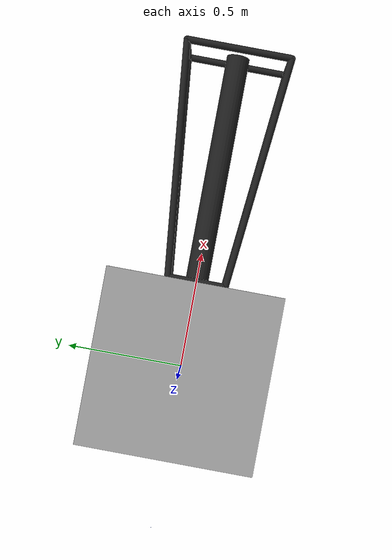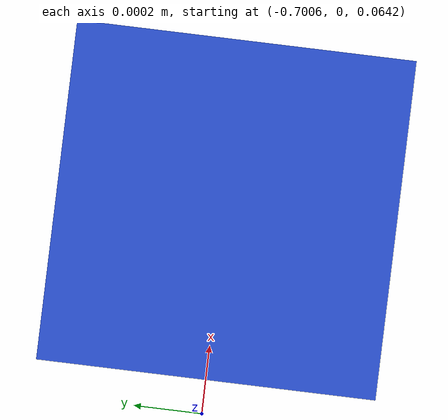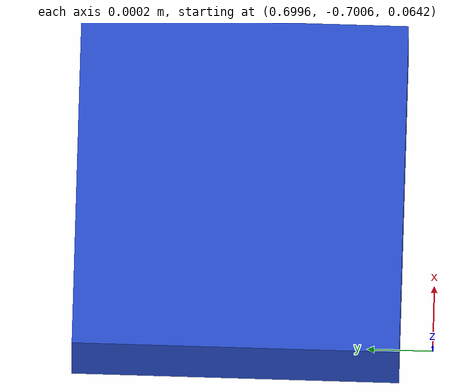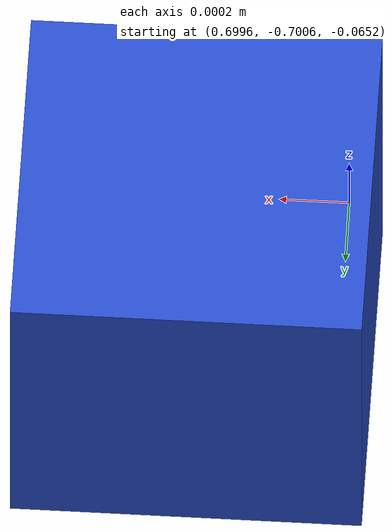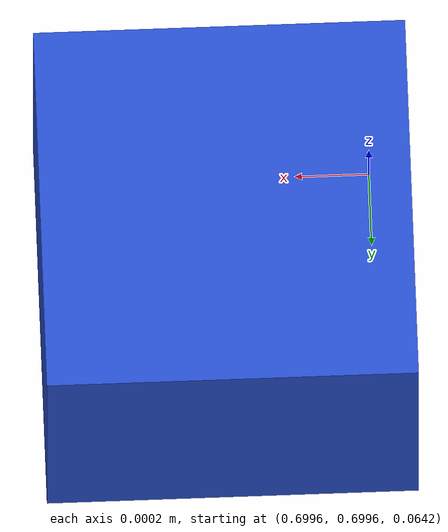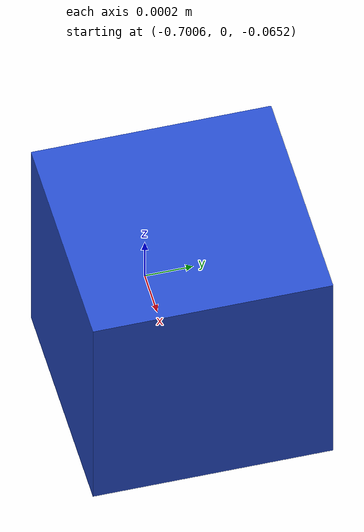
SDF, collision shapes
<?xml version="1.0" ?>

  <sdf version="1.5">
    <model name="tilt_tricopter">

      <include>
        <uri>model://tilt_tricopter_base</uri>
        <name>tilt_tricopter_base</name>
        <pose>0 0 0.0 0 0 0</pose>
      </include>
      <link name="front_rod">
        <pose>0.875 0 0 0 0 0</pose>
        <inertial>
          <pose>0 0 0 0 0 0</pose>
          <mass>0.1</mass>
          <inertia>
            <ixx>0.1</ixx>
            <iyy>0.1</iyy>
            <izz>0.1</izz>
            <ixy>0</ixy>
            <ixz>0</ixz>
            <iyz>0</iyz>
          </inertia>
        </inertial>
        <collision name="front_rod_collision">
          <pose>0 0 0 0 1.57079632679 0</pose>
          <geometry>
            <cylinder>
              <length>1.0</length>
              <radius>0.05</radius>
            </cylinder>
          </geometry>
        </collision>
        <visual name="front_rod_visual">
          <pose>0 0 0 0 1.57079632679 0</pose>
          <geometry>
            <cylinder>
              <length>1.0</length>
              <radius>0.05</radius>
            </cylinder>
          </geometry>
          <material>
            <script>
              <name>Gazebo/Black</name>
            </script>
          </material>
        </visual>

        <collision name="front_frame_near_top_collision">
          <pose>-0.5 0.0 0.09 0 1.5707963267948966 1.5707963267948966</pose>
          <geometry>
            <cylinder>
              <length>0.25</length>
              <radius>0.015</radius>
            </cylinder>
          </geometry>
        </collision>
        <visual name="front_frame_near_top_visual">
          <pose>-0.5 0.0 0.09 0 1.5707963267948966 1.5707963267948966</pose>
          <geometry>
            <cylinder>
              <length>0.25</length>
              <radius>0.015</radius>
            </cylinder>
          </geometry>
          <material>
            <script>
              <name>Gazebo/Black</name>
            </script>
          </material>
        </visual>

        <collision name="front_frame_near_bottom_collision">
          <pose>-0.5 0.0 -0.09 0 1.5707963267948966 1.5707963267948966</pose>
          <geometry>
            <cylinder>
              <length>0.25</length>
              <radius>0.015</radius>
            </cylinder>
          </geometry>
        </collision>
        <visual name="front_frame_near_bottom_visual">
          <pose>-0.5 0.0 -0.09 0 1.5707963267948966 1.5707963267948966</pose>
          <geometry>
            <cylinder>
              <length>0.25</length>
              <radius>0.015</radius>
            </cylinder>
          </geometry>
          <material>
            <script>
              <name>Gazebo/Black</name>
            </script>
          </material>
        </visual>

        <collision name="front_frame_near_left_collision">
          <pose>-0.5 -0.125 0.0 0 3.141592653589793 0.0</pose>
          <geometry>
            <cylinder>
              <length>0.18</length>
              <radius>0.015</radius>
            </cylinder>
          </geometry>
        </collision>
        <visual name="front_frame_near_left_visual">
          <pose>-0.5 -0.125 0.0 0 3.141592653589793 0.0</pose>
          <geometry>
            <cylinder>
              <length>0.18</length>
              <radius>0.015</radius>
            </cylinder>
          </geometry>
          <material>
            <script>
              <name>Gazebo/Black</name>
            </script>
          </material>
        </visual>

        <collision name="front_frame_near_right_collision">
          <pose>-0.5 0.125 0.0 0 3.141592653589793 0.0</pose>
          <geometry>
            <cylinder>
              <length>0.18</length>
              <radius>0.015</radius>
            </cylinder>
          </geometry>
        </collision>
        <visual name="front_frame_near_right_visual">
          <pose>-0.5 0.125 0.0 0 3.141592653589793 0.0</pose>
          <geometry>
            <cylinder>
              <length>0.18</length>
              <radius>0.015</radius>
            </cylinder>
          </geometry>
          <material>
            <script>
              <name>Gazebo/Black</name>
            </script>
          </material>
        </visual>

        <collision name="front_frame_far_top_collision">
          <pose>0.5 0.0 0.14 0 1.5707963267948966 1.5707963267948966</pose>
          <geometry>
            <cylinder>
              <length>0.45</length>
              <radius>0.015</radius>
            </cylinder>
          </geometry>
        </collision>
        <visual name="front_frame_far_top_visual">
          <pose>0.5 0.0 0.14 0 1.5707963267948966 1.5707963267948966</pose>
          <geometry>
            <cylinder>
              <length>0.45</length>
              <radius>0.015</radius>
            </cylinder>
          </geometry>
          <material>
            <script>
              <name>Gazebo/Black</name>
            </script>
          </material>
        </visual>

        <collision name="front_frame_far_bottom_collision">
          <pose>0.5 0.0 -0.14 0 1.5707963267948966 1.5707963267948966</pose>
          <geometry>
            <cylinder>
              <length>0.45</length>
              <radius>0.015</radius>
            </cylinder>
          </geometry>
        </collision>
        <visual name="front_frame_far_bottom_visual">
          <pose>0.5 0.0 -0.14 0 1.5707963267948966 1.5707963267948966</pose>
          <geometry>
            <cylinder>
              <length>0.45</length>
              <radius>0.015</radius>
            </cylinder>
          </geometry>
          <material>
            <script>
              <name>Gazebo/Black</name>
            </script>
          </material>
        </visual>

        <collision name="front_frame_far_left_collision">
          <pose>0.5 -0.225 0.0 0 3.141592653589793 0.0</pose>
          <geometry>
            <cylinder>
              <length>0.28</length>
              <radius>0.015</radius>
            </cylinder>
          </geometry>
        </collision>
        <visual name="front_frame_far_left_visual">
          <pose>0.5 -0.225 0.0 0 3.141592653589793 0.0</pose>
          <geometry>
            <cylinder>
              <length>0.28</length>
              <radius>0.015</radius>
            </cylinder>
          </geometry>
          <material>
            <script>
              <name>Gazebo/Black</name>
            </script>
          </material>
        </visual>

        <collision name="front_frame_far_right_collision">
          <pose>0.5 0.225 0.0 0 3.141592653589793 0.0</pose>
          <geometry>
            <cylinder>
              <length>0.28</length>
              <radius>0.015</radius>
            </cylinder>
          </geometry>
        </collision>
        <visual name="front_frame_far_right_visual">
          <pose>0.5 0.225 0.0 0 3.141592653589793 0.0</pose>
          <geometry>
            <cylinder>
              <length>0.28</length>
              <radius>0.015</radius>
            </cylinder>
          </geometry>
          <material>
            <script>
              <name>Gazebo/Black</name>
            </script>
          </material>
        </visual>

        <collision name="front_frame_left_top_collision">
          <pose>0.0 -0.175 0.115 0 1.5210854558165732 -0.09966865249116204</pose>
          <geometry>
            <cylinder>
              <length>1.0062305898749053</length>
              <radius>0.015</radius>
            </cylinder>
          </geometry>
        </collision>
        <visual name="front_frame_left_top_visual">
          <pose>0.0 -0.175 0.115 0 1.5210854558165732 -0.09966865249116204</pose>
          <geometry>
            <cylinder>
              <length>1.0062305898749053</length>
              <radius>0.015</radius>
            </cylinder>
          </geometry>
          <material>
            <script>
              <name>Gazebo/Black</name>
            </script>
          </material>
        </visual>

        <collision name="front_frame_right_top_collision">
          <pose>0.0 0.175 0.115 0 1.5210854558165732 0.09966865249116204</pose>
          <geometry>
            <cylinder>
              <length>1.0062305898749053</length>
              <radius>0.015</radius>
            </cylinder>
          </geometry>
        </collision>
        <visual name="front_frame_right_top_visual">
          <pose>0.0 0.175 0.115 0 1.5210854558165732 0.09966865249116204</pose>
          <geometry>
            <cylinder>
              <length>1.0062305898749053</length>
              <radius>0.015</radius>
            </cylinder>
          </geometry>
          <material>
            <script>
              <name>Gazebo/Black</name>
            </script>
          </material>
        </visual>

        <collision name="front_frame_left_bottom_collision">
          <pose>0.0 -0.175 -0.115 0 1.6205071977732202 -0.09966865249116204</pose>
          <geometry>
            <cylinder>
              <length>1.0062305898749053</length>
              <radius>0.015</radius>
            </cylinder>
          </geometry>
        </collision>
        <visual name="front_frame_left_bottom_visual">
          <pose>0.0 -0.175 -0.115 0 1.6205071977732202 -0.09966865249116204</pose>
          <geometry>
            <cylinder>
              <length>1.0062305898749053</length>
              <radius>0.015</radius>
            </cylinder>
          </geometry>
          <material>
            <script>
              <name>Gazebo/Black</name>
            </script>
          </material>
        </visual>

        <collision name="front_frame_right_bottom_collision">
          <pose>0.0 0.175 -0.115 0 1.6205071977732202 0.09966865249116204</pose>
          <geometry>
            <cylinder>
              <length>1.0062305898749053</length>
              <radius>0.015</radius>
            </cylinder>
          </geometry>
        </collision>
        <visual name="front_frame_right_bottom_visual">
          <pose>0.0 0.175 -0.115 0 1.6205071977732202 0.09966865249116204</pose>
          <geometry>
            <cylinder>
              <length>1.0062305898749053</length>
              <radius>0.015</radius>
            </cylinder>
          </geometry>
          <material>
            <script>
              <name>Gazebo/Black</name>
            </script>
          </material>
        </visual>

        <sensor name="front_rangefinder" type="ray">
          <pose>0.5 0 0 0 0 0</pose>
          <always_on>true</always_on>
          <update_rate>50</update_rate>
          <ray>
            <scan>
              <horizontal>
                <samples>1</samples>
                <resolution>1</resolution>
                <min_angle>0</min_angle>
                <max_angle>0</max_angle>
              </horizontal>
            </scan>
            <range>
              <min>0.05</min>
              <max>10.0</max>
              <resolution>0.001</resolution>
            </range>
          </ray>
        </sensor>
      </link>
      <joint name="front_rod_joint" type="fixed">
        <parent>tilt_tricopter_base::base</parent>
        <child>front_rod</child>
        <sensor name="front_rod_force_torque" type="force_torque">
          <always_on>true</always_on>
          <update_rate>100</update_rate>
          <force_torque>
            <frame>child</frame>
            <measure_direction>parent_to_child</measure_direction>
          </force_torque>
        </sensor>
      </joint>

      <include>
        <uri>model://tilt_tricopter_tilt_front</uri>
        <name>tilt_tricopter_tilt_front_0</name>
        <pose>0.7 -0.7 0 0 0 0</pose>
      </include>
      <joint name="tilt_tricopter_tilt_front_0_joint" type="revolute">
        <parent>tilt_tricopter_base::base</parent>
        <child>tilt_tricopter_tilt_front_0::tilt</child>
        <axis>
          <xyz>0 1 0</xyz>
          <limit>
            <lower>-1e+16</lower>
            <upper>1e+16</upper>
          </limit>
          <dynamics>
            <damping>0.1</damping>
            <spring_stiffness>0</spring_stiffness>
            <spring_reference>0</spring_reference>
          </dynamics>
          <use_parent_model_frame>1</use_parent_model_frame>
        </axis>
        <physics>
          <ode>
            <implicit_spring_damper>1</implicit_spring_damper>
          </ode>
        </physics>
      </joint>
      <plugin name="tilt_tricopter_tilt_front_0_plugin" filename='librotors_gazebo_motor_model.so'>
        <robotNamespace></robotNamespace>
        <jointName>tilt_tricopter_tilt_front_0_joint </jointName>
        <linkName>tilt_tricopter_tilt_front_0::tilt</linkName>
        <turningDirection>cw</turningDirection>
        <motorType>position</motorType>
        <commandSubTopic>/gazebo/command/tilt1_pos</commandSubTopic>
        <motorNumber>0</motorNumber>
        <motorSpeedPubTopic>tilt_pos/0</motorSpeedPubTopic>
        <joint_control_pid>
          <p>3</p>
          <i>1.2</i>
          <d>0.8</d>
          <iMax>10</iMax>
          <iMin>-10</iMin>
          <cmdMax>50</cmdMax>
          <cmdMin>-50</cmdMin>
        </joint_control_pid>
      </plugin>

      <include>
        <uri>model://tilt_tricopter_tilt_back</uri>
        <name>tilt_tricopter_tilt_back_0</name>
        <pose>-0.7 0.0 0 0 0 0</pose>
      </include>
      <joint name="tilt_tricopter_tilt_back_0_joint" type="revolute">
        <parent>tilt_tricopter_base::base</parent>
        <child>tilt_tricopter_tilt_back_0::tilt</child>
        <axis>
          <xyz>0 1 0</xyz>
          <limit>
            <lower>-1e+16</lower>
            <upper>1e+16</upper>
          </limit>
          <dynamics>
            <damping>0.1</damping>
            <spring_stiffness>0</spring_stiffness>
            <spring_reference>0</spring_reference>
          </dynamics>
          <use_parent_model_frame>1</use_parent_model_frame>
        </axis>
        <physics>
          <ode>
            <implicit_spring_damper>1</implicit_spring_damper>
          </ode>
        </physics>
      </joint>
      <plugin name="tilt_tricopter_tilt_back_0_plugin" filename='librotors_gazebo_motor_model.so'>
        <robotNamespace></robotNamespace>
        <jointName>tilt_tricopter_tilt_back_0_joint </jointName>
        <linkName>tilt_tricopter_tilt_back_0::tilt</linkName>
        <turningDirection>cw</turningDirection>
        <motorType>position</motorType>
        <commandSubTopic>/gazebo/command/tilt1_pos</commandSubTopic>
        <motorNumber>1</motorNumber>
        <motorSpeedPubTopic>tilt_pos/1</motorSpeedPubTopic>
        <joint_control_pid>
          <p>3</p>
          <i>1.2</i>
          <d>0.8</d>
          <iMax>10</iMax>
          <iMin>-10</iMin>
          <cmdMax>50</cmdMax>
          <cmdMin>-50</cmdMin>
        </joint_control_pid>
      </plugin>

      <include>
        <uri>model://tilt_tricopter_tilt_front</uri>
        <name>tilt_tricopter_tilt_front_1</name>
        <pose>0.7 0.7 0 0 0 3.141592653589793</pose>
      </include>
      <joint name="tilt_tricopter_tilt_front_1_joint" type="revolute">
        <parent>tilt_tricopter_base::base</parent>
        <child>tilt_tricopter_tilt_front_1::tilt</child>
        <axis>
          <xyz>0 -1 0</xyz>
          <limit>
            <lower>-1e+16</lower>
            <upper>1e+16</upper>
          </limit>
          <dynamics>
            <damping>0.1</damping>
            <spring_stiffness>0</spring_stiffness>
            <spring_reference>0</spring_reference>
          </dynamics>
          <use_parent_model_frame>1</use_parent_model_frame>
        </axis>
        <physics>
          <ode>
            <implicit_spring_damper>1</implicit_spring_damper>
          </ode>
        </physics>
      </joint>
      <plugin name="tilt_tricopter_tilt_front_1_plugin" filename='librotors_gazebo_motor_model.so'>
        <robotNamespace></robotNamespace>
        <jointName>tilt_tricopter_tilt_front_1_joint </jointName>
        <linkName>tilt_tricopter_tilt_front_1::tilt</linkName>
        <turningDirection>cw</turningDirection>
        <motorType>position</motorType>
        <commandSubTopic>/gazebo/command/tilt1_pos</commandSubTopic>
        <motorNumber>2</motorNumber>
        <motorSpeedPubTopic>tilt_pos/2</motorSpeedPubTopic>
        <joint_control_pid>
          <p>3</p>
          <i>1.2</i>
          <d>0.8</d>
          <iMax>10</iMax>
          <iMin>-10</iMin>
          <cmdMax>50</cmdMax>
          <cmdMin>-50</cmdMin>
        </joint_control_pid>
      </plugin>

  <include>
    <uri>model://tilt_tricopter_prop</uri>
    <name>tilt_tricopter_prop_0</name>
    <pose>0.7 -0.7 0.0647 0 0 0</pose>
  </include>
  <joint name="tilt_tricopter_prop_0_joint" type="revolute">
    <parent>tilt_tricopter_tilt_front_0::tilt</parent>
    <child>tilt_tricopter_prop_0::prop</child>
    <axis>
      <xyz>0 0 1</xyz>
      <limit>
        <lower>-1e+16</lower>
        <upper>1e+16</upper>
      </limit>
      <dynamics>
        <damping>0.0001</damping>
      </dynamics>
      <use_parent_model_frame>1</use_parent_model_frame>
    </axis>
  </joint>
  <plugin name = "prop_0_plugin" filename='librotors_gazebo_motor_model.so'>
    <robotNamespace></robotNamespace>
    <jointName>tilt_tricopter_prop_0_joint </jointName>
    <linkName>tilt_tricopter_prop_0::prop</linkName>
    <turningDirection>ccw</turningDirection>
    <timeConstantUp>0.0125</timeConstantUp>
    <timeConstantDown>0.025</timeConstantDown>
    <maxRotVelocity>1000</maxRotVelocity>
    <motorConstant>1.199e-05</motorConstant>
    <momentConstant>0.1</momentConstant>
    <commandSubTopic>/gazebo/command/prop_speed</commandSubTopic>
    <motorNumber>0</motorNumber>
    <rotorDragCoefficient>0.000806428</rotorDragCoefficient>
    <rollingMomentCoefficient>1e-06</rollingMomentCoefficient>
    <motorSpeedPubTopic>prop_speed/0</motorSpeedPubTopic>
    <rotorVelocitySlowdownSim>10</rotorVelocitySlowdownSim>
  </plugin>

  <include>
    <uri>model://tilt_tricopter_prop</uri>
    <name>tilt_tricopter_prop_1</name>
    <pose>0.7 -0.7 -0.0647 0 0 0</pose>
  </include>
  <joint name="tilt_tricopter_prop_1_joint" type="revolute">
    <parent>tilt_tricopter_tilt_front_0::tilt</parent>
    <child>tilt_tricopter_prop_1::prop</child>
    <axis>
      <xyz>0 0 1</xyz>
      <limit>
        <lower>-1e+16</lower>
        <upper>1e+16</upper>
      </limit>
      <dynamics>
        <damping>0.0001</damping>
      </dynamics>
      <use_parent_model_frame>1</use_parent_model_frame>
    </axis>
  </joint>
  <plugin name = "prop_1_plugin" filename='librotors_gazebo_motor_model.so'>
    <robotNamespace></robotNamespace>
    <jointName>tilt_tricopter_prop_1_joint </jointName>
    <linkName>tilt_tricopter_prop_1::prop</linkName>
    <turningDirection>cw</turningDirection>
    <timeConstantUp>0.0125</timeConstantUp>
    <timeConstantDown>0.025</timeConstantDown>
    <maxRotVelocity>1000</maxRotVelocity>
    <motorConstant>1.199e-05</motorConstant>
    <momentConstant>0.1</momentConstant>
    <commandSubTopic>/gazebo/command/prop_speed</commandSubTopic>
    <motorNumber>1</motorNumber>
    <rotorDragCoefficient>0.000806428</rotorDragCoefficient>
    <rollingMomentCoefficient>1e-06</rollingMomentCoefficient>
    <motorSpeedPubTopic>prop_speed/1</motorSpeedPubTopic>
    <rotorVelocitySlowdownSim>10</rotorVelocitySlowdownSim>
  </plugin>

  <include>
    <uri>model://tilt_tricopter_prop</uri>
    <name>tilt_tricopter_prop_2</name>
    <pose>-0.7 -0.0 0.0647 0 0 0</pose>
  </include>
  <joint name="tilt_tricopter_prop_2_joint" type="revolute">
    <parent>tilt_tricopter_tilt_back_0::tilt</parent>
    <child>tilt_tricopter_prop_2::prop</child>
    <axis>
      <xyz>0 0 1</xyz>
      <limit>
        <lower>-1e+16</lower>
        <upper>1e+16</upper>
      </limit>
      <dynamics>
        <damping>0.0001</damping>
      </dynamics>
      <use_parent_model_frame>1</use_parent_model_frame>
    </axis>
  </joint>
  <plugin name = "prop_2_plugin" filename='librotors_gazebo_motor_model.so'>
    <robotNamespace></robotNamespace>
    <jointName>tilt_tricopter_prop_2_joint </jointName>
    <linkName>tilt_tricopter_prop_2::prop</linkName>
    <turningDirection>ccw</turningDirection>
    <timeConstantUp>0.0125</timeConstantUp>
    <timeConstantDown>0.025</timeConstantDown>
    <maxRotVelocity>1000</maxRotVelocity>
    <motorConstant>1.199e-05</motorConstant>
    <momentConstant>0.1</momentConstant>
    <commandSubTopic>/gazebo/command/prop_speed</commandSubTopic>
    <motorNumber>2</motorNumber>
    <rotorDragCoefficient>0.000806428</rotorDragCoefficient>
    <rollingMomentCoefficient>1e-06</rollingMomentCoefficient>
    <motorSpeedPubTopic>prop_speed/2</motorSpeedPubTopic>
    <rotorVelocitySlowdownSim>10</rotorVelocitySlowdownSim>
  </plugin>

  <include>
    <uri>model://tilt_tricopter_prop</uri>
    <name>tilt_tricopter_prop_3</name>
    <pose>-0.7 -0.0 -0.0647 0 0 0</pose>
  </include>
  <joint name="tilt_tricopter_prop_3_joint" type="revolute">
    <parent>tilt_tricopter_tilt_back_0::tilt</parent>
    <child>tilt_tricopter_prop_3::prop</child>
    <axis>
      <xyz>0 0 1</xyz>
      <limit>
        <lower>-1e+16</lower>
        <upper>1e+16</upper>
      </limit>
      <dynamics>
        <damping>0.0001</damping>
      </dynamics>
      <use_parent_model_frame>1</use_parent_model_frame>
    </axis>
  </joint>
  <plugin name = "prop_3_plugin" filename='librotors_gazebo_motor_model.so'>
    <robotNamespace></robotNamespace>
    <jointName>tilt_tricopter_prop_3_joint </jointName>
    <linkName>tilt_tricopter_prop_3::prop</linkName>
    <turningDirection>cw</turningDirection>
    <timeConstantUp>0.0125</timeConstantUp>
    <timeConstantDown>0.025</timeConstantDown>
    <maxRotVelocity>1000</maxRotVelocity>
    <motorConstant>1.199e-05</motorConstant>
    <momentConstant>0.1</momentConstant>
    <commandSubTopic>/gazebo/command/prop_speed</commandSubTopic>
    <motorNumber>3</motorNumber>
    <rotorDragCoefficient>0.000806428</rotorDragCoefficient>
    <rollingMomentCoefficient>1e-06</rollingMomentCoefficient>
    <motorSpeedPubTopic>prop_speed/3</motorSpeedPubTopic>
    <rotorVelocitySlowdownSim>10</rotorVelocitySlowdownSim>
  </plugin>

  <include>
    <uri>model://tilt_tricopter_prop</uri>
    <name>tilt_tricopter_prop_4</name>
    <pose>0.7 0.7 0.0647 0 0 0</pose>
  </include>
  <joint name="tilt_tricopter_prop_4_joint" type="revolute">
    <parent>tilt_tricopter_tilt_front_1::tilt</parent>
    <child>tilt_tricopter_prop_4::prop</child>
    <axis>
      <xyz>0 0 1</xyz>
      <limit>
        <lower>-1e+16</lower>
        <upper>1e+16</upper>
      </limit>
      <dynamics>
        <damping>0.0001</damping>
      </dynamics>
      <use_parent_model_frame>1</use_parent_model_frame>
    </axis>
  </joint>
  <plugin name = "prop_4_plugin" filename='librotors_gazebo_motor_model.so'>
    <robotNamespace></robotNamespace>
    <jointName>tilt_tricopter_prop_4_joint </jointName>
    <linkName>tilt_tricopter_prop_4::prop</linkName>
    <turningDirection>ccw</turningDirection>
    <timeConstantUp>0.0125</timeConstantUp>
    <timeConstantDown>0.025</timeConstantDown>
    <maxRotVelocity>1000</maxRotVelocity>
    <motorConstant>1.199e-05</motorConstant>
    <momentConstant>0.1</momentConstant>
    <commandSubTopic>/gazebo/command/prop_speed</commandSubTopic>
    <motorNumber>4</motorNumber>
    <rotorDragCoefficient>0.000806428</rotorDragCoefficient>
    <rollingMomentCoefficient>1e-06</rollingMomentCoefficient>
    <motorSpeedPubTopic>prop_speed/4</motorSpeedPubTopic>
    <rotorVelocitySlowdownSim>10</rotorVelocitySlowdownSim>
  </plugin>

  <include>
    <uri>model://tilt_tricopter_prop</uri>
    <name>tilt_tricopter_prop_5</name>
    <pose>0.7 0.7 -0.0647 0 0 0</pose>
  </include>
  <joint name="tilt_tricopter_prop_5_joint" type="revolute">
    <parent>tilt_tricopter_tilt_front_1::tilt</parent>
    <child>tilt_tricopter_prop_5::prop</child>
    <axis>
      <xyz>0 0 1</xyz>
      <limit>
        <lower>-1e+16</lower>
        <upper>1e+16</upper>
      </limit>
      <dynamics>
        <damping>0.0001</damping>
      </dynamics>
      <use_parent_model_frame>1</use_parent_model_frame>
    </axis>
  </joint>
  <plugin name = "prop_5_plugin" filename='librotors_gazebo_motor_model.so'>
    <robotNamespace></robotNamespace>
    <jointName>tilt_tricopter_prop_5_joint </jointName>
    <linkName>tilt_tricopter_prop_5::prop</linkName>
    <turningDirection>cw</turningDirection>
    <timeConstantUp>0.0125</timeConstantUp>
    <timeConstantDown>0.025</timeConstantDown>
    <maxRotVelocity>1000</maxRotVelocity>
    <motorConstant>1.199e-05</motorConstant>
    <momentConstant>0.1</momentConstant>
    <commandSubTopic>/gazebo/command/prop_speed</commandSubTopic>
    <motorNumber>5</motorNumber>
    <rotorDragCoefficient>0.000806428</rotorDragCoefficient>
    <rollingMomentCoefficient>1e-06</rollingMomentCoefficient>
    <motorSpeedPubTopic>prop_speed/5</motorSpeedPubTopic>
    <rotorVelocitySlowdownSim>10</rotorVelocitySlowdownSim>
  </plugin>

<plugin filename="gz-sim-odometry-publisher-system"
        name="gz::sim::systems::OdometryPublisher">
  <odom_frame>odom</odom_frame>
  <robot_base_frame>tilt_tricopter_base::base</robot_base_frame>
  <dimensions>3</dimensions>
  <odom_topic>/model/tilt_tricopter/odometry</odom_topic>
</plugin>

<plugin name="ArduRotorTiltTricopter" filename="libArduRotorTiltTricopter.so">
  <fdm_addr>127.0.0.1</fdm_addr>
  <fdm_port_in>9002</fdm_port_in>
  <fdm_port_out>9003</fdm_port_out>
  <modelXYZToAirplaneXForwardZDown>0 0 0 3.141593 0 0</modelXYZToAirplaneXForwardZDown>
  <gazeboXYZToNED>0 0 0 3.141593 0 0</gazeboXYZToNED>
  <motor_num>6</motor_num>
  <servo_num>3</servo_num>
  <motor_pub>/gazebo/command/prop_speed</motor_pub>
  <servo1_pub>/gazebo/command/tilt1_pos</servo1_pub>
  <frontRodContactForceXTopic>/tilt_tricopter/front_rod/contact_force_x</frontRodContactForceXTopic>
  <frontRodForceTorqueName>front_rod_force_torque</frontRodForceTorqueName>
  <adm002UdpBindAddr>127.0.0.1</adm002UdpBindAddr>
  <adm002UdpBindPort>9024</adm002UdpBindPort>
  <adm002ForceScale>1.0</adm002ForceScale>
  <adm002StreamRateHz>100.0</adm002StreamRateHz>
  <rangefinderName>front_rangefinder</rangefinderName>
  <rangefinderUdpBindAddr>127.0.0.1</rangefinderUdpBindAddr>
  <rangefinderUdpBindPort>9025</rangefinderUdpBindPort>
  <rangefinderMinDistanceM>0.05</rangefinderMinDistanceM>
  <rangefinderMaxDistanceM>10.0</rangefinderMaxDistanceM>
  <rangefinderRateHz>50.0</rangefinderRateHz>
  <imuName>tilt_tricopter_base::imu_link::imu_sensor</imuName>
  <connectionTimeoutMaxCount>5</connectionTimeoutMaxCount>
</plugin>

<plugin name="imu_plugin" filename="librotors_gazebo_imu_plugin.so">
  <robotNamespace>tilt_tricopter</robotNamespace>
  <linkName>tilt_tricopter_base::imu_link</linkName>
  <imuTopic>imu</imuTopic>
  <gyroscopeNoiseDensity>0.000349</gyroscopeNoiseDensity>     <!-- rad/s/√Hz -->
  <gyroscopeBiasRandomWalk>0.000266</gyroscopeBiasRandomWalk>          <!-- rad/s²/√Hz -->
  <gyroscopeBiasCorrelationTime>600</gyroscopeBiasCorrelationTime>
  <gyroscopeTurnOnBiasSigma>0.0004</gyroscopeTurnOnBiasSigma>  <!-- rad/s -->
  <accelerometerNoiseDensity>0.00324</accelerometerNoiseDensity> <!-- m/s²/√Hz -->
  <accelerometerRandomWalk>0.0056</accelerometerRandomWalk>     <!-- m/s³/√Hz -->
  <accelerometerBiasCorrelationTime>600</accelerometerBiasCorrelationTime>
  <accelerometerTurnOnBiasSigma>0.016</accelerometerTurnOnBiasSigma> <!-- m/s² -->
</plugin>

</model>
</sdf>

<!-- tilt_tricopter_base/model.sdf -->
<sdf version="1.5">
    <model name="tilt_tricopter_base">

      <link name="base">
      <pose>0 0 0.0  0 0 0</pose>
      <inertial>
        <pose>0 0 0 0 0 0</pose>
        <mass>1.0</mass>
        <inertia>
          <ixx>0.2</ixx>
          <iyy>0.2</iyy>
          <izz>0.2</izz>
          <ixy>0</ixy>
          <ixz>0</ixz>
          <iyz>0</iyz>
        </inertia>
      </inertial>
      <collision name="base_collision">
        <pose>0 0 0  0 0 0</pose>
        <geometry>
          <box>
            <size>0.750 0.750 0.45</size>
          </box>
        </geometry>
        <surface>
          <contact>
            <ode/>
          </contact>
          <friction>
            <ode/>
          </friction>
        </surface>
      </collision>
      <visual name="base_visual">
        <geometry>
          <mesh>
            <uri>model://tilt_tricopter_base/meshes/base.STL</uri>
          </mesh>
        </geometry>
        <material>
          <script>
            <name>Gazebo/Grey</name>
          </script>
        </material>
      </visual>
    </link>
    <link name='imu_link'>
    <inertial>
      <pose>0 0 0 0 0 0</pose>
      <mass>0.15</mass>
      <inertia>
        <ixx>0.00001</ixx>
        <ixy>0</ixy>
        <ixz>0</ixz>
        <iyy>0.00002</iyy>
        <iyz>0</iyz>
        <izz>0.00002</izz>
      </inertia>
    </inertial>
    <visual name="imu_visual">
      <pose>0 0 0 0 0 0</pose>
      <geometry>
          <box>
              <size>0.02 0.02 0.02</size>
          </box>
      </geometry>
      <material>
          <script>
              <name>Gazebo/Green</name>
          </script>
      </material>
    </visual>
    <sensor name="imu_sensor" type="imu">
      <pose>0 0 0 0 0 0</pose>
      <always_on>1</always_on>
      <update_rate>1000.0</update_rate>
      <topic>__default_topic__</topic>
    </sensor>
  </link>
  <joint name='imu_joint' type='fixed'>
    <child>imu_link</child>
    <parent>base</parent>
    <axis>
      <xyz>0 0 1</xyz>
      <limit>
        <lower>-0.00001</lower>
        <upper>0.00001</upper>
        <effort>0</effort>
        <velocity>0</velocity>
      </limit>
      <dynamics>
        <damping>1.0</damping>
      </dynamics>
      <use_parent_model_frame>1</use_parent_model_frame>
    </axis>
    <physics>
      <ode>
        <implicit_spring_damper>1</implicit_spring_damper>
      </ode>
    </physics>
  </joint>

</model>
</sdf>

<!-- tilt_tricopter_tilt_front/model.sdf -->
<sdf version="1.5">
    <model name="tilt_tricopter_tilt_front">
      <link name='tilt'>
      <pose>0.0 -0.0 0.0 0 -0 0</pose>
      <inertial>
        <pose>0 0 0 0 -0 0</pose>
        <mass>0.2</mass>
        <inertia>
          <ixx>0.04</ixx>
          <ixy>0</ixy>
          <ixz>0</ixz>
          <iyy>0.1</iyy>
          <iyz>0</iyz>
          <izz>0.01</izz>
        </inertia>
      </inertial>
      <collision name='tilt_collision'>
        <pose>0 0 0 0 -0 0</pose>
        <geometry>
          <box>
            <size>0.0 0.0 0.0</size>
          </box>
        </geometry>
        <max_contacts>1</max_contacts>
      </collision>
      <visual name='tilt_visual'>
        <pose>0 0 0 0 -0 0</pose>
        <geometry>
          <mesh>
            <uri>model://tilt_tricopter_tilt_front/meshes/tilt_front.STL</uri>
          </mesh>
        </geometry>
        <material>
          <script>
            <name>Gazebo/Blue</name>
            <uri>__default__</uri>
          </script>
        </material>
      </visual>
      <gravity>1</gravity>
      <velocity_decay />
      <self_collide>0</self_collide>
    </link>
  </model>
</sdf>

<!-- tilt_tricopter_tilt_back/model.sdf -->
<sdf version="1.5">
    <model name="tilt_tricopter_tilt_back">
      <link name='tilt'>
      <pose>0.0 -0.0 0.0 0 -0 0</pose>
      <inertial>
        <pose>0 0 0 0 -0 0</pose>
        <mass>0.001</mass>
        <inertia>
          <ixx>0.001</ixx>
          <ixy>0</ixy>
          <ixz>0</ixz>
          <iyy>0.01</iyy>
          <iyz>0</iyz>
          <izz>0.001</izz>
        </inertia>
      </inertial>
      <collision name='tilt_collision'>
        <pose>0 0 0 0 -0 0</pose>
        <geometry>
          <box>
            <size>0.0 0.0 0.0</size>
          </box>
        </geometry>
        <max_contacts>1</max_contacts>
      </collision>
      <visual name='tilt_visual'>
        <pose>0 0 0 0 -0 0</pose>
        <geometry>
          <mesh>
            <uri>model://tilt_tricopter_tilt_back/meshes/tilt_back.STL</uri>
          </mesh>
        </geometry>
        <material>
          <script>
            <name>Gazebo/Blue</name>
            <uri>__default__</uri>
          </script>
        </material>
      </visual>
      <gravity>1</gravity>
      <velocity_decay />
      <self_collide>0</self_collide>
    </link>
  </model>
</sdf>

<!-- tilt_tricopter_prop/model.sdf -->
<sdf version="1.5">
    <model name="tilt_tricopter_prop">
      <link name='prop'>
      <pose>0.0 -0.0 0.0 0 -0 0</pose>
      <inertial>
        <pose>0 0 0 0 -0 0</pose>
        <mass>0.001</mass>
        <inertia>
          <ixx>0.001</ixx>
          <ixy>0</ixy>
          <ixz>0</ixz>
          <iyy>0.001</iyy>
          <iyz>0</iyz>
          <izz>0.001</izz>
        </inertia>
      </inertial>
      <collision name='prop_collision'>
        <pose>0 0 0 0 -0 0</pose>
        <geometry>
          <box>
            <size>0.001 0.001 0.001</size>
          </box>
        </geometry>
        <max_contacts>1</max_contacts>
      </collision>
      <visual name='prop_visual'>
        <pose>0 0 0 0 -0 0</pose>
        <geometry>
          <mesh>
            <uri>model://tilt_tricopter_prop/meshes/prop.STL</uri>
          </mesh>
        </geometry>
        <material>
          <script>
            <name>Gazebo/Blue</name>
            <uri>__default__</uri>
          </script>
        </material>
      </visual>
      <gravity>1</gravity>
      <velocity_decay />
      <self_collide>0</self_collide>
    </link>
  </model>
</sdf>
